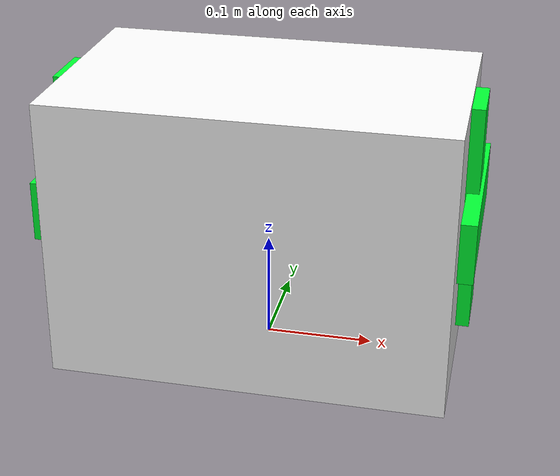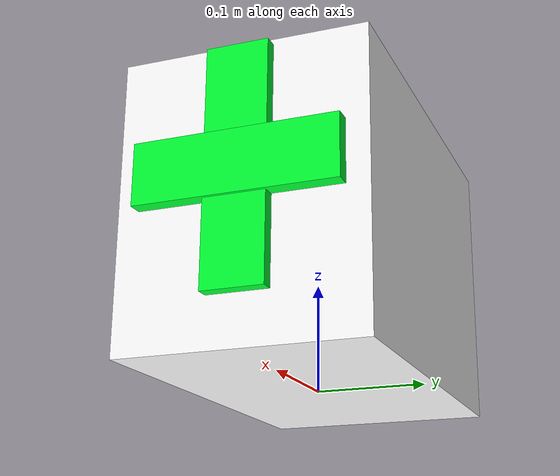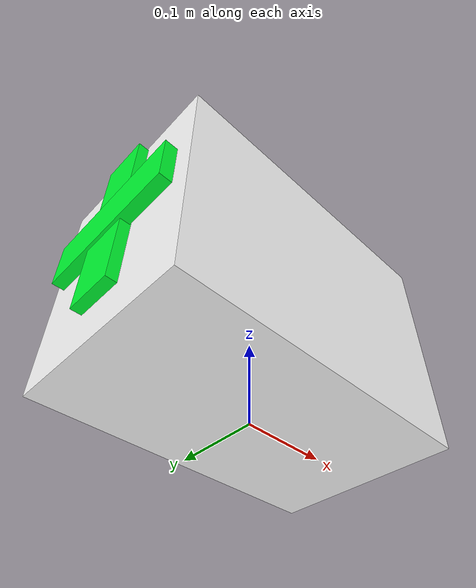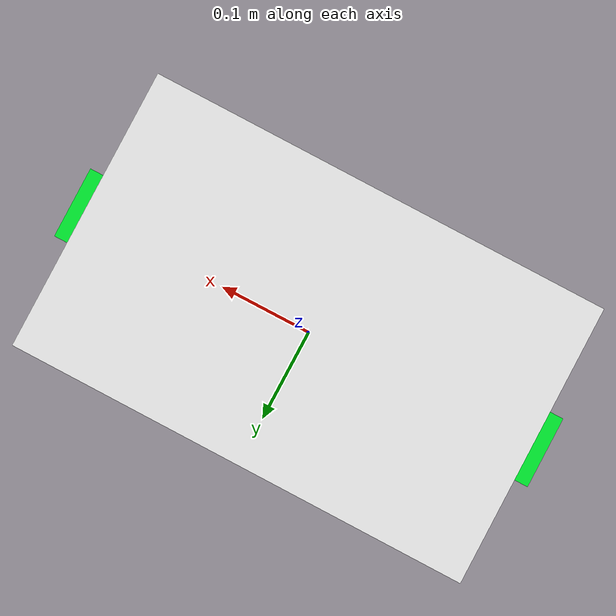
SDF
<?xml version="1.0" ?>
<sdf version="1.6">
  <model name="a1an_assistive_medicine_box">
    <static>true</static>
    <link name="medicine_box_link">
      <inertial>
        <mass>0.12</mass>
        <inertia>
          <ixx>0.001</ixx>
          <iyy>0.001</iyy>
          <izz>0.001</izz>
        </inertia>
      </inertial>
      <collision name="collision">
        <pose>0 0 0.13 0 0 0</pose>
        <geometry>
          <box>
            <size>0.36 0.22 0.26</size>
          </box>
        </geometry>
      </collision>
      <visual name="box_visual">
        <pose>0 0 0.13 0 0 0</pose>
        <geometry>
          <box>
            <size>0.36 0.22 0.26</size>
          </box>
        </geometry>
        <material>
          <ambient>0.95 0.95 0.95 1</ambient>
          <diffuse>1.0 1.0 1.0 1</diffuse>
        </material>
      </visual>
      <visual name="green_cross_vertical">
        <pose>0.186 0 0.15 0 1.5708 0</pose>
        <geometry>
          <box>
            <size>0.21 0.055 0.012</size>
          </box>
        </geometry>
        <material>
          <ambient>0.0 0.85 0.15 1</ambient>
          <diffuse>0.0 1.0 0.2 1</diffuse>
        </material>
      </visual>
      <visual name="green_cross_horizontal">
        <pose>0.188 0 0.15 0 1.5708 0</pose>
        <geometry>
          <box>
            <size>0.055 0.18 0.014</size>
          </box>
        </geometry>
        <material>
          <ambient>0.0 0.85 0.15 1</ambient>
          <diffuse>0.0 1.0 0.2 1</diffuse>
        </material>
      </visual>
      <visual name="green_cross_back_vertical">
        <pose>-0.186 0 0.15 0 1.5708 0</pose>
        <geometry>
          <box>
            <size>0.21 0.055 0.012</size>
          </box>
        </geometry>
        <material>
          <ambient>0.0 0.85 0.15 1</ambient>
          <diffuse>0.0 1.0 0.2 1</diffuse>
        </material>
      </visual>
      <visual name="green_cross_back_horizontal">
        <pose>-0.188 0 0.15 0 1.5708 0</pose>
        <geometry>
          <box>
            <size>0.055 0.18 0.014</size>
          </box>
        </geometry>
        <material>
          <ambient>0.0 0.85 0.15 1</ambient>
          <diffuse>0.0 1.0 0.2 1</diffuse>
        </material>
      </visual>
    </link>
  </model>
</sdf>
